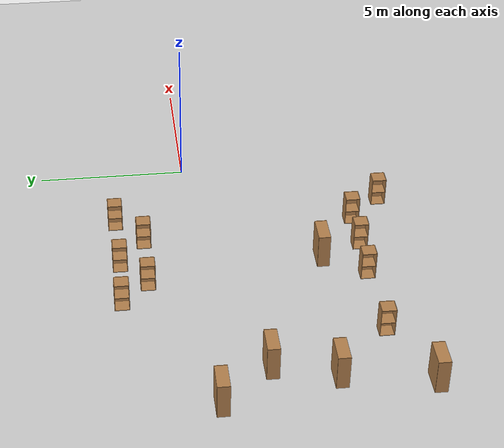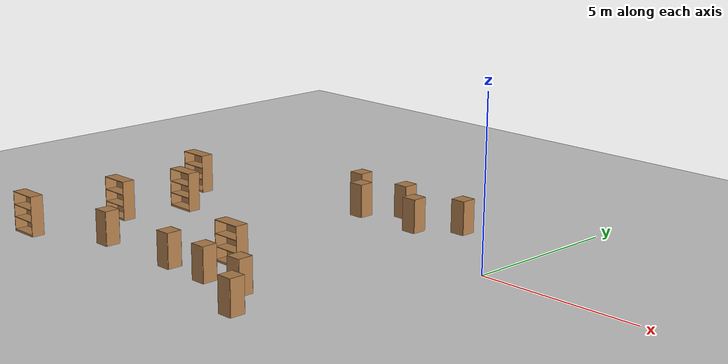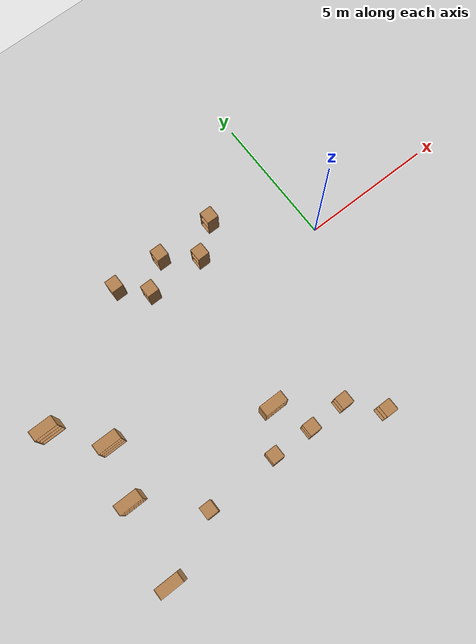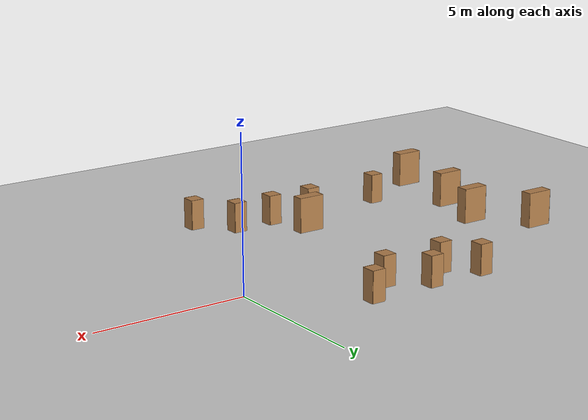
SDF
<sdf version="1.6">
 <world name="default">
  <model name="ground_plane">
   <static>1</static>
   <link name="link">
    <collision name="collision">
     <geometry><plane><normal>0 0 1</normal><size>100 100</size></plane></geometry>
     <surface><friction><ode><mu>100</mu><mu2>50</mu2></ode></friction></surface>
    </collision>
    <visual name="visual">
     <cast_shadows>0</cast_shadows>
     <geometry><plane><normal>0 0 1</normal><size>100 100</size></plane></geometry>
     <material>
      <script><uri>file://media/materials/scripts/gazebo.material</uri><name>Gazebo/Grey</name></script>
     </material>
    </visual>
   </link>
  </model>
  <model name="cabinet_22">
   <static>1</static>
   <link name="cabinet_bottom_plate">
    <inertial>
     <pose>0 0 -1 0 -0 0</pose>
     <inertia><ixx>2.05</ixx><ixy>0</ixy><ixz>0</ixz><iyy>2.05</iyy><iyz>0</iyz><izz>2.05</izz></inertia>
     <mass>25</mass>
    </inertial>
    <collision name="cabinet_bottom_plate_geom">
     <pose>0 0 0.01 0 -0 0</pose>
     <geometry><box><size>0.45 0.45 0.02</size></box></geometry>
    </collision>
    <visual name="cabinet_bottom_plate_geom_visual">
     <pose>0 0 0.01 0 -0 0</pose>
     <geometry><box><size>0.45 0.45 0.02</size></box></geometry>
     <material>
      <script><uri>file://media/materials/scripts/gazebo.material</uri><name>Gazebo/Wood</name></script>
     </material>
    </visual>
    <collision name="cabinet_bottom_plate_geom_cabinet_back_plate">
     <pose>0.235 0 0.51 0 -0 0</pose>
     <geometry><box><size>0.02 0.45 1.02</size></box></geometry>
    </collision>
    <visual name="cabinet_bottom_plate_geom_cabinet_back_plate_visual">
     <pose>0.235 0 0.51 0 -0 0</pose>
     <geometry><box><size>0.02 0.45 1.02</size></box></geometry>
     <material>
      <script><uri>file://media/materials/scripts/gazebo.material</uri><name>Gazebo/Wood</name></script>
     </material>
    </visual>
    <collision name="cabinet_bottom_plate_geom_cabinet_left_plate">
     <pose>0 0.235 0.51 0 -0 0</pose>
     <geometry><box><size>0.45 0.02 1.02</size></box></geometry>
    </collision>
    <visual name="cabinet_bottom_plate_geom_cabinet_left_plate_visual">
     <pose>0 0.235 0.51 0 -0 0</pose>
     <geometry><box><size>0.45 0.02 1.02</size></box></geometry>
     <material>
      <script><uri>file://media/materials/scripts/gazebo.material</uri><name>Gazebo/Wood</name></script>
     </material>
    </visual>
    <collision name="cabinet_bottom_plate_geom_cabinet_middle_plate">
     <pose>0 0 0.51 0 -0 0</pose>
     <geometry><box><size>0.45 0.45 0.02</size></box></geometry>
    </collision>
    <visual name="cabinet_bottom_plate_geom_cabinet_middle_plate_visual">
     <pose>0 0 0.51 0 -0 0</pose>
     <geometry><box><size>0.45 0.45 0.02</size></box></geometry>
     <material>
      <script><uri>file://media/materials/scripts/gazebo.material</uri><name>Gazebo/Wood</name></script>
     </material>
    </visual>
    <collision name="cabinet_bottom_plate_geom_cabinet_right_plate">
     <pose>0 -0.235 0.51 0 -0 0</pose>
     <geometry><box><size>0.45 0.02 1.02</size></box></geometry>
    </collision>
    <visual name="cabinet_bottom_plate_geom_cabinet_right_plate_visual">
     <pose>0 -0.235 0.51 0 -0 0</pose>
     <geometry><box><size>0.45 0.02 1.02</size></box></geometry>
     <material>
      <script><uri>file://media/materials/scripts/gazebo.material</uri><name>Gazebo/Wood</name></script>
     </material>
    </visual>
    <collision name="cabinet_bottom_plate_geom_cabinet_top_plate">
     <pose>0 0 1.01 0 -0 0</pose>
     <geometry><box><size>0.45 0.45 0.02</size></box></geometry>
    </collision>
    <visual name="cabinet_bottom_plate_geom_cabinet_top_plate_visual">
     <pose>0 0 1.01 0 -0 0</pose>
     <geometry><box><size>0.45 0.45 0.02</size></box></geometry>
     <material>
      <script><uri>file://media/materials/scripts/gazebo.material</uri><name>Gazebo/Wood</name></script>
     </material>
    </visual>
   </link>
   <pose>-9.10964 -5.62725 0 0 -0 0</pose>
  </model>
  <model name="cabinet_24">
   <static>1</static>
   <link name="cabinet_bottom_plate">
    <inertial>
     <pose>0 0 -1 0 -0 0</pose>
     <inertia><ixx>2.05</ixx><ixy>0</ixy><ixz>0</ixz><iyy>2.05</iyy><iyz>0</iyz><izz>2.05</izz></inertia>
     <mass>25</mass>
    </inertial>
    <collision name="cabinet_bottom_plate_geom">
     <pose>0 0 0.01 0 -0 0</pose>
     <geometry><box><size>0.45 0.45 0.02</size></box></geometry>
    </collision>
    <visual name="cabinet_bottom_plate_geom_visual">
     <pose>0 0 0.01 0 -0 0</pose>
     <geometry><box><size>0.45 0.45 0.02</size></box></geometry>
     <material>
      <script><uri>file://media/materials/scripts/gazebo.material</uri><name>Gazebo/Wood</name></script>
     </material>
    </visual>
    <collision name="cabinet_bottom_plate_geom_cabinet_back_plate">
     <pose>0.235 0 0.51 0 -0 0</pose>
     <geometry><box><size>0.02 0.45 1.02</size></box></geometry>
    </collision>
    <visual name="cabinet_bottom_plate_geom_cabinet_back_plate_visual">
     <pose>0.235 0 0.51 0 -0 0</pose>
     <geometry><box><size>0.02 0.45 1.02</size></box></geometry>
     <material>
      <script><uri>file://media/materials/scripts/gazebo.material</uri><name>Gazebo/Wood</name></script>
     </material>
    </visual>
    <collision name="cabinet_bottom_plate_geom_cabinet_left_plate">
     <pose>0 0.235 0.51 0 -0 0</pose>
     <geometry><box><size>0.45 0.02 1.02</size></box></geometry>
    </collision>
    <visual name="cabinet_bottom_plate_geom_cabinet_left_plate_visual">
     <pose>0 0.235 0.51 0 -0 0</pose>
     <geometry><box><size>0.45 0.02 1.02</size></box></geometry>
     <material>
      <script><uri>file://media/materials/scripts/gazebo.material</uri><name>Gazebo/Wood</name></script>
     </material>
    </visual>
    <collision name="cabinet_bottom_plate_geom_cabinet_middle_plate">
     <pose>0 0 0.51 0 -0 0</pose>
     <geometry><box><size>0.45 0.45 0.02</size></box></geometry>
    </collision>
    <visual name="cabinet_bottom_plate_geom_cabinet_middle_plate_visual">
     <pose>0 0 0.51 0 -0 0</pose>
     <geometry><box><size>0.45 0.45 0.02</size></box></geometry>
     <material>
      <script><uri>file://media/materials/scripts/gazebo.material</uri><name>Gazebo/Wood</name></script>
     </material>
    </visual>
    <collision name="cabinet_bottom_plate_geom_cabinet_right_plate">
     <pose>0 -0.235 0.51 0 -0 0</pose>
     <geometry><box><size>0.45 0.02 1.02</size></box></geometry>
    </collision>
    <visual name="cabinet_bottom_plate_geom_cabinet_right_plate_visual">
     <pose>0 -0.235 0.51 0 -0 0</pose>
     <geometry><box><size>0.45 0.02 1.02</size></box></geometry>
     <material>
      <script><uri>file://media/materials/scripts/gazebo.material</uri><name>Gazebo/Wood</name></script>
     </material>
    </visual>
    <collision name="cabinet_bottom_plate_geom_cabinet_top_plate">
     <pose>0 0 1.01 0 -0 0</pose>
     <geometry><box><size>0.45 0.45 0.02</size></box></geometry>
    </collision>
    <visual name="cabinet_bottom_plate_geom_cabinet_top_plate_visual">
     <pose>0 0 1.01 0 -0 0</pose>
     <geometry><box><size>0.45 0.45 0.02</size></box></geometry>
     <material>
      <script><uri>file://media/materials/scripts/gazebo.material</uri><name>Gazebo/Wood</name></script>
     </material>
    </visual>
   </link>
   <pose>-6.32849 -5.56078 0 0 -0 0</pose>
  </model>
  <model name="cabinet_25">
   <static>1</static>
   <link name="cabinet_bottom_plate">
    <inertial>
     <pose>0 0 -1 0 -0 0</pose>
     <inertia><ixx>2.05</ixx><ixy>0</ixy><ixz>0</ixz><iyy>2.05</iyy><iyz>0</iyz><izz>2.05</izz></inertia>
     <mass>25</mass>
    </inertial>
    <collision name="cabinet_bottom_plate_geom">
     <pose>0 0 0.01 0 -0 0</pose>
     <geometry><box><size>0.45 0.45 0.02</size></box></geometry>
    </collision>
    <visual name="cabinet_bottom_plate_geom_visual">
     <pose>0 0 0.01 0 -0 0</pose>
     <geometry><box><size>0.45 0.45 0.02</size></box></geometry>
     <material>
      <script><uri>file://media/materials/scripts/gazebo.material</uri><name>Gazebo/Wood</name></script>
     </material>
    </visual>
    <collision name="cabinet_bottom_plate_geom_cabinet_back_plate">
     <pose>0.235 0 0.51 0 -0 0</pose>
     <geometry><box><size>0.02 0.45 1.02</size></box></geometry>
    </collision>
    <visual name="cabinet_bottom_plate_geom_cabinet_back_plate_visual">
     <pose>0.235 0 0.51 0 -0 0</pose>
     <geometry><box><size>0.02 0.45 1.02</size></box></geometry>
     <material>
      <script><uri>file://media/materials/scripts/gazebo.material</uri><name>Gazebo/Wood</name></script>
     </material>
    </visual>
    <collision name="cabinet_bottom_plate_geom_cabinet_left_plate">
     <pose>0 0.235 0.51 0 -0 0</pose>
     <geometry><box><size>0.45 0.02 1.02</size></box></geometry>
    </collision>
    <visual name="cabinet_bottom_plate_geom_cabinet_left_plate_visual">
     <pose>0 0.235 0.51 0 -0 0</pose>
     <geometry><box><size>0.45 0.02 1.02</size></box></geometry>
     <material>
      <script><uri>file://media/materials/scripts/gazebo.material</uri><name>Gazebo/Wood</name></script>
     </material>
    </visual>
    <collision name="cabinet_bottom_plate_geom_cabinet_middle_plate">
     <pose>0 0 0.51 0 -0 0</pose>
     <geometry><box><size>0.45 0.45 0.02</size></box></geometry>
    </collision>
    <visual name="cabinet_bottom_plate_geom_cabinet_middle_plate_visual">
     <pose>0 0 0.51 0 -0 0</pose>
     <geometry><box><size>0.45 0.45 0.02</size></box></geometry>
     <material>
      <script><uri>file://media/materials/scripts/gazebo.material</uri><name>Gazebo/Wood</name></script>
     </material>
    </visual>
    <collision name="cabinet_bottom_plate_geom_cabinet_right_plate">
     <pose>0 -0.235 0.51 0 -0 0</pose>
     <geometry><box><size>0.45 0.02 1.02</size></box></geometry>
    </collision>
    <visual name="cabinet_bottom_plate_geom_cabinet_right_plate_visual">
     <pose>0 -0.235 0.51 0 -0 0</pose>
     <geometry><box><size>0.45 0.02 1.02</size></box></geometry>
     <material>
      <script><uri>file://media/materials/scripts/gazebo.material</uri><name>Gazebo/Wood</name></script>
     </material>
    </visual>
    <collision name="cabinet_bottom_plate_geom_cabinet_top_plate">
     <pose>0 0 1.01 0 -0 0</pose>
     <geometry><box><size>0.45 0.45 0.02</size></box></geometry>
    </collision>
    <visual name="cabinet_bottom_plate_geom_cabinet_top_plate_visual">
     <pose>0 0 1.01 0 -0 0</pose>
     <geometry><box><size>0.45 0.45 0.02</size></box></geometry>
     <material>
      <script><uri>file://media/materials/scripts/gazebo.material</uri><name>Gazebo/Wood</name></script>
     </material>
    </visual>
   </link>
   <pose>-4.77669 -5.59085 0 0 -0 0</pose>
  </model>
  <model name="cabinet_26">
   <static>1</static>
   <link name="cabinet_bottom_plate">
    <inertial>
     <pose>0 0 -1 0 -0 0</pose>
     <inertia><ixx>2.05</ixx><ixy>0</ixy><ixz>0</ixz><iyy>2.05</iyy><iyz>0</iyz><izz>2.05</izz></inertia>
     <mass>25</mass>
    </inertial>
    <collision name="cabinet_bottom_plate_geom">
     <pose>0 0 0.01 0 -0 0</pose>
     <geometry><box><size>0.45 0.45 0.02</size></box></geometry>
    </collision>
    <visual name="cabinet_bottom_plate_geom_visual">
     <pose>0 0 0.01 0 -0 0</pose>
     <geometry><box><size>0.45 0.45 0.02</size></box></geometry>
     <material>
      <script><uri>file://media/materials/scripts/gazebo.material</uri><name>Gazebo/Wood</name></script>
     </material>
    </visual>
    <collision name="cabinet_bottom_plate_geom_cabinet_back_plate">
     <pose>0.235 0 0.51 0 -0 0</pose>
     <geometry><box><size>0.02 0.45 1.02</size></box></geometry>
    </collision>
    <visual name="cabinet_bottom_plate_geom_cabinet_back_plate_visual">
     <pose>0.235 0 0.51 0 -0 0</pose>
     <geometry><box><size>0.02 0.45 1.02</size></box></geometry>
     <material>
      <script><uri>file://media/materials/scripts/gazebo.material</uri><name>Gazebo/Wood</name></script>
     </material>
    </visual>
    <collision name="cabinet_bottom_plate_geom_cabinet_left_plate">
     <pose>0 0.235 0.51 0 -0 0</pose>
     <geometry><box><size>0.45 0.02 1.02</size></box></geometry>
    </collision>
    <visual name="cabinet_bottom_plate_geom_cabinet_left_plate_visual">
     <pose>0 0.235 0.51 0 -0 0</pose>
     <geometry><box><size>0.45 0.02 1.02</size></box></geometry>
     <material>
      <script><uri>file://media/materials/scripts/gazebo.material</uri><name>Gazebo/Wood</name></script>
     </material>
    </visual>
    <collision name="cabinet_bottom_plate_geom_cabinet_middle_plate">
     <pose>0 0 0.51 0 -0 0</pose>
     <geometry><box><size>0.45 0.45 0.02</size></box></geometry>
    </collision>
    <visual name="cabinet_bottom_plate_geom_cabinet_middle_plate_visual">
     <pose>0 0 0.51 0 -0 0</pose>
     <geometry><box><size>0.45 0.45 0.02</size></box></geometry>
     <material>
      <script><uri>file://media/materials/scripts/gazebo.material</uri><name>Gazebo/Wood</name></script>
     </material>
    </visual>
    <collision name="cabinet_bottom_plate_geom_cabinet_right_plate">
     <pose>0 -0.235 0.51 0 -0 0</pose>
     <geometry><box><size>0.45 0.02 1.02</size></box></geometry>
    </collision>
    <visual name="cabinet_bottom_plate_geom_cabinet_right_plate_visual">
     <pose>0 -0.235 0.51 0 -0 0</pose>
     <geometry><box><size>0.45 0.02 1.02</size></box></geometry>
     <material>
      <script><uri>file://media/materials/scripts/gazebo.material</uri><name>Gazebo/Wood</name></script>
     </material>
    </visual>
    <collision name="cabinet_bottom_plate_geom_cabinet_top_plate">
     <pose>0 0 1.01 0 -0 0</pose>
     <geometry><box><size>0.45 0.45 0.02</size></box></geometry>
    </collision>
    <visual name="cabinet_bottom_plate_geom_cabinet_top_plate_visual">
     <pose>0 0 1.01 0 -0 0</pose>
     <geometry><box><size>0.45 0.45 0.02</size></box></geometry>
     <material>
      <script><uri>file://media/materials/scripts/gazebo.material</uri><name>Gazebo/Wood</name></script>
     </material>
    </visual>
   </link>
   <pose>-3.36117 -5.55915 0 0 -0 0</pose>
  </model>
  <model name="cabinet_27">
   <static>1</static>
   <link name="cabinet_bottom_plate">
    <inertial>
     <pose>0 0 -1 0 -0 0</pose>
     <inertia><ixx>2.05</ixx><ixy>0</ixy><ixz>0</ixz><iyy>2.05</iyy><iyz>0</iyz><izz>2.05</izz></inertia>
     <mass>25</mass>
    </inertial>
    <collision name="cabinet_bottom_plate_geom">
     <pose>0 0 0.01 0 -0 0</pose>
     <geometry><box><size>0.45 0.45 0.02</size></box></geometry>
    </collision>
    <visual name="cabinet_bottom_plate_geom_visual">
     <pose>0 0 0.01 0 -0 0</pose>
     <geometry><box><size>0.45 0.45 0.02</size></box></geometry>
     <material>
      <script><uri>file://media/materials/scripts/gazebo.material</uri><name>Gazebo/Wood</name></script>
     </material>
    </visual>
    <collision name="cabinet_bottom_plate_geom_cabinet_back_plate">
     <pose>0.235 0 0.51 0 -0 0</pose>
     <geometry><box><size>0.02 0.45 1.02</size></box></geometry>
    </collision>
    <visual name="cabinet_bottom_plate_geom_cabinet_back_plate_visual">
     <pose>0.235 0 0.51 0 -0 0</pose>
     <geometry><box><size>0.02 0.45 1.02</size></box></geometry>
     <material>
      <script><uri>file://media/materials/scripts/gazebo.material</uri><name>Gazebo/Wood</name></script>
     </material>
    </visual>
    <collision name="cabinet_bottom_plate_geom_cabinet_left_plate">
     <pose>0 0.235 0.51 0 -0 0</pose>
     <geometry><box><size>0.45 0.02 1.02</size></box></geometry>
    </collision>
    <visual name="cabinet_bottom_plate_geom_cabinet_left_plate_visual">
     <pose>0 0.235 0.51 0 -0 0</pose>
     <geometry><box><size>0.45 0.02 1.02</size></box></geometry>
     <material>
      <script><uri>file://media/materials/scripts/gazebo.material</uri><name>Gazebo/Wood</name></script>
     </material>
    </visual>
    <collision name="cabinet_bottom_plate_geom_cabinet_middle_plate">
     <pose>0 0 0.51 0 -0 0</pose>
     <geometry><box><size>0.45 0.45 0.02</size></box></geometry>
    </collision>
    <visual name="cabinet_bottom_plate_geom_cabinet_middle_plate_visual">
     <pose>0 0 0.51 0 -0 0</pose>
     <geometry><box><size>0.45 0.45 0.02</size></box></geometry>
     <material>
      <script><uri>file://media/materials/scripts/gazebo.material</uri><name>Gazebo/Wood</name></script>
     </material>
    </visual>
    <collision name="cabinet_bottom_plate_geom_cabinet_right_plate">
     <pose>0 -0.235 0.51 0 -0 0</pose>
     <geometry><box><size>0.45 0.02 1.02</size></box></geometry>
    </collision>
    <visual name="cabinet_bottom_plate_geom_cabinet_right_plate_visual">
     <pose>0 -0.235 0.51 0 -0 0</pose>
     <geometry><box><size>0.45 0.02 1.02</size></box></geometry>
     <material>
      <script><uri>file://media/materials/scripts/gazebo.material</uri><name>Gazebo/Wood</name></script>
     </material>
    </visual>
    <collision name="cabinet_bottom_plate_geom_cabinet_top_plate">
     <pose>0 0 1.01 0 -0 0</pose>
     <geometry><box><size>0.45 0.45 0.02</size></box></geometry>
    </collision>
    <visual name="cabinet_bottom_plate_geom_cabinet_top_plate_visual">
     <pose>0 0 1.01 0 -0 0</pose>
     <geometry><box><size>0.45 0.45 0.02</size></box></geometry>
     <material>
      <script><uri>file://media/materials/scripts/gazebo.material</uri><name>Gazebo/Wood</name></script>
     </material>
    </visual>
   </link>
   <pose>-2.36751 -6.66376 0 0 -0 0</pose>
  </model>
  <model name="cabinet_85">
   <static>1</static>
   <link name="cabinet_bottom_plate">
    <inertial>
     <pose>0 0 -1 0 -0 0</pose>
     <inertia><ixx>2.05</ixx><ixy>0</ixy><ixz>0</ixz><iyy>2.05</iyy><iyz>0</iyz><izz>2.05</izz></inertia>
     <mass>25</mass>
    </inertial>
    <collision name="cabinet_bottom_plate_geom">
     <pose>0 0 0.01 0 -0 0</pose>
     <geometry><box><size>0.45 0.45 0.02</size></box></geometry>
    </collision>
    <visual name="cabinet_bottom_plate_geom_visual">
     <pose>0 0 0.01 0 -0 0</pose>
     <geometry><box><size>0.45 0.45 0.02</size></box></geometry>
     <material>
      <script><uri>file://media/materials/scripts/gazebo.material</uri><name>Gazebo/Wood</name></script>
     </material>
    </visual>
    <collision name="cabinet_bottom_plate_geom_cabinet_back_plate">
     <pose>0.235 0 0.51 0 -0 0</pose>
     <geometry><box><size>0.02 0.45 1.02</size></box></geometry>
    </collision>
    <visual name="cabinet_bottom_plate_geom_cabinet_back_plate_visual">
     <pose>0.235 0 0.51 0 -0 0</pose>
     <geometry><box><size>0.02 0.45 1.02</size></box></geometry>
     <material>
      <script><uri>file://media/materials/scripts/gazebo.material</uri><name>Gazebo/Wood</name></script>
     </material>
    </visual>
    <collision name="cabinet_bottom_plate_geom_cabinet_left_plate">
     <pose>0 0.235 0.51 0 -0 0</pose>
     <geometry><box><size>0.45 0.02 1.02</size></box></geometry>
    </collision>
    <visual name="cabinet_bottom_plate_geom_cabinet_left_plate_visual">
     <pose>0 0.235 0.51 0 -0 0</pose>
     <geometry><box><size>0.45 0.02 1.02</size></box></geometry>
     <material>
      <script><uri>file://media/materials/scripts/gazebo.material</uri><name>Gazebo/Wood</name></script>
     </material>
    </visual>
    <collision name="cabinet_bottom_plate_geom_cabinet_middle_plate">
     <pose>0 0 0.51 0 -0 0</pose>
     <geometry><box><size>0.45 0.45 0.02</size></box></geometry>
    </collision>
    <visual name="cabinet_bottom_plate_geom_cabinet_middle_plate_visual">
     <pose>0 0 0.51 0 -0 0</pose>
     <geometry><box><size>0.45 0.45 0.02</size></box></geometry>
     <material>
      <script><uri>file://media/materials/scripts/gazebo.material</uri><name>Gazebo/Wood</name></script>
     </material>
    </visual>
    <collision name="cabinet_bottom_plate_geom_cabinet_right_plate">
     <pose>0 -0.235 0.51 0 -0 0</pose>
     <geometry><box><size>0.45 0.02 1.02</size></box></geometry>
    </collision>
    <visual name="cabinet_bottom_plate_geom_cabinet_right_plate_visual">
     <pose>0 -0.235 0.51 0 -0 0</pose>
     <geometry><box><size>0.45 0.02 1.02</size></box></geometry>
     <material>
      <script><uri>file://media/materials/scripts/gazebo.material</uri><name>Gazebo/Wood</name></script>
     </material>
    </visual>
    <collision name="cabinet_bottom_plate_geom_cabinet_top_plate">
     <pose>0 0 1.01 0 -0 0</pose>
     <geometry><box><size>0.45 0.45 0.02</size></box></geometry>
    </collision>
    <visual name="cabinet_bottom_plate_geom_cabinet_top_plate_visual">
     <pose>0 0 1.01 0 -0 0</pose>
     <geometry><box><size>0.45 0.45 0.02</size></box></geometry>
     <material>
      <script><uri>file://media/materials/scripts/gazebo.material</uri><name>Gazebo/Wood</name></script>
     </material>
    </visual>
   </link>
   <pose>-7.09937 2.49622 0 0 -0 0</pose>
  </model>
  <model name="cabinet_86">
   <static>1</static>
   <link name="cabinet_bottom_plate">
    <inertial>
     <pose>0 0 -1 0 -0 0</pose>
     <inertia><ixx>2.05</ixx><ixy>0</ixy><ixz>0</ixz><iyy>2.05</iyy><iyz>0</iyz><izz>2.05</izz></inertia>
     <mass>25</mass>
    </inertial>
    <collision name="cabinet_bottom_plate_geom">
     <pose>0 0 0.01 0 -0 0</pose>
     <geometry><box><size>0.45 0.45 0.02</size></box></geometry>
    </collision>
    <visual name="cabinet_bottom_plate_geom_visual">
     <pose>0 0 0.01 0 -0 0</pose>
     <geometry><box><size>0.45 0.45 0.02</size></box></geometry>
     <material>
      <script><uri>file://media/materials/scripts/gazebo.material</uri><name>Gazebo/Wood</name></script>
     </material>
    </visual>
    <collision name="cabinet_bottom_plate_geom_cabinet_back_plate">
     <pose>0.235 0 0.51 0 -0 0</pose>
     <geometry><box><size>0.02 0.45 1.02</size></box></geometry>
    </collision>
    <visual name="cabinet_bottom_plate_geom_cabinet_back_plate_visual">
     <pose>0.235 0 0.51 0 -0 0</pose>
     <geometry><box><size>0.02 0.45 1.02</size></box></geometry>
     <material>
      <script><uri>file://media/materials/scripts/gazebo.material</uri><name>Gazebo/Wood</name></script>
     </material>
    </visual>
    <collision name="cabinet_bottom_plate_geom_cabinet_left_plate">
     <pose>0 0.235 0.51 0 -0 0</pose>
     <geometry><box><size>0.45 0.02 1.02</size></box></geometry>
    </collision>
    <visual name="cabinet_bottom_plate_geom_cabinet_left_plate_visual">
     <pose>0 0.235 0.51 0 -0 0</pose>
     <geometry><box><size>0.45 0.02 1.02</size></box></geometry>
     <material>
      <script><uri>file://media/materials/scripts/gazebo.material</uri><name>Gazebo/Wood</name></script>
     </material>
    </visual>
    <collision name="cabinet_bottom_plate_geom_cabinet_middle_plate">
     <pose>0 0 0.51 0 -0 0</pose>
     <geometry><box><size>0.45 0.45 0.02</size></box></geometry>
    </collision>
    <visual name="cabinet_bottom_plate_geom_cabinet_middle_plate_visual">
     <pose>0 0 0.51 0 -0 0</pose>
     <geometry><box><size>0.45 0.45 0.02</size></box></geometry>
     <material>
      <script><uri>file://media/materials/scripts/gazebo.material</uri><name>Gazebo/Wood</name></script>
     </material>
    </visual>
    <collision name="cabinet_bottom_plate_geom_cabinet_right_plate">
     <pose>0 -0.235 0.51 0 -0 0</pose>
     <geometry><box><size>0.45 0.02 1.02</size></box></geometry>
    </collision>
    <visual name="cabinet_bottom_plate_geom_cabinet_right_plate_visual">
     <pose>0 -0.235 0.51 0 -0 0</pose>
     <geometry><box><size>0.45 0.02 1.02</size></box></geometry>
     <material>
      <script><uri>file://media/materials/scripts/gazebo.material</uri><name>Gazebo/Wood</name></script>
     </material>
    </visual>
    <collision name="cabinet_bottom_plate_geom_cabinet_top_plate">
     <pose>0 0 1.01 0 -0 0</pose>
     <geometry><box><size>0.45 0.45 0.02</size></box></geometry>
    </collision>
    <visual name="cabinet_bottom_plate_geom_cabinet_top_plate_visual">
     <pose>0 0 1.01 0 -0 0</pose>
     <geometry><box><size>0.45 0.45 0.02</size></box></geometry>
     <material>
      <script><uri>file://media/materials/scripts/gazebo.material</uri><name>Gazebo/Wood</name></script>
     </material>
    </visual>
   </link>
   <pose>-6.2108 1.60929 0 0 -0 0</pose>
  </model>
  <model name="cabinet_87">
   <static>1</static>
   <link name="cabinet_bottom_plate">
    <inertial>
     <pose>0 0 -1 0 -0 0</pose>
     <inertia><ixx>2.05</ixx><ixy>0</ixy><ixz>0</ixz><iyy>2.05</iyy><iyz>0</iyz><izz>2.05</izz></inertia>
     <mass>25</mass>
    </inertial>
    <collision name="cabinet_bottom_plate_geom">
     <pose>0 0 0.01 0 -0 0</pose>
     <geometry><box><size>0.45 0.45 0.02</size></box></geometry>
    </collision>
    <visual name="cabinet_bottom_plate_geom_visual">
     <pose>0 0 0.01 0 -0 0</pose>
     <geometry><box><size>0.45 0.45 0.02</size></box></geometry>
     <material>
      <script><uri>file://media/materials/scripts/gazebo.material</uri><name>Gazebo/Wood</name></script>
     </material>
    </visual>
    <collision name="cabinet_bottom_plate_geom_cabinet_back_plate">
     <pose>0.235 0 0.51 0 -0 0</pose>
     <geometry><box><size>0.02 0.45 1.02</size></box></geometry>
    </collision>
    <visual name="cabinet_bottom_plate_geom_cabinet_back_plate_visual">
     <pose>0.235 0 0.51 0 -0 0</pose>
     <geometry><box><size>0.02 0.45 1.02</size></box></geometry>
     <material>
      <script><uri>file://media/materials/scripts/gazebo.material</uri><name>Gazebo/Wood</name></script>
     </material>
    </visual>
    <collision name="cabinet_bottom_plate_geom_cabinet_left_plate">
     <pose>0 0.235 0.51 0 -0 0</pose>
     <geometry><box><size>0.45 0.02 1.02</size></box></geometry>
    </collision>
    <visual name="cabinet_bottom_plate_geom_cabinet_left_plate_visual">
     <pose>0 0.235 0.51 0 -0 0</pose>
     <geometry><box><size>0.45 0.02 1.02</size></box></geometry>
     <material>
      <script><uri>file://media/materials/scripts/gazebo.material</uri><name>Gazebo/Wood</name></script>
     </material>
    </visual>
    <collision name="cabinet_bottom_plate_geom_cabinet_middle_plate">
     <pose>0 0 0.51 0 -0 0</pose>
     <geometry><box><size>0.45 0.45 0.02</size></box></geometry>
    </collision>
    <visual name="cabinet_bottom_plate_geom_cabinet_middle_plate_visual">
     <pose>0 0 0.51 0 -0 0</pose>
     <geometry><box><size>0.45 0.45 0.02</size></box></geometry>
     <material>
      <script><uri>file://media/materials/scripts/gazebo.material</uri><name>Gazebo/Wood</name></script>
     </material>
    </visual>
    <collision name="cabinet_bottom_plate_geom_cabinet_right_plate">
     <pose>0 -0.235 0.51 0 -0 0</pose>
     <geometry><box><size>0.45 0.02 1.02</size></box></geometry>
    </collision>
    <visual name="cabinet_bottom_plate_geom_cabinet_right_plate_visual">
     <pose>0 -0.235 0.51 0 -0 0</pose>
     <geometry><box><size>0.45 0.02 1.02</size></box></geometry>
     <material>
      <script><uri>file://media/materials/scripts/gazebo.material</uri><name>Gazebo/Wood</name></script>
     </material>
    </visual>
    <collision name="cabinet_bottom_plate_geom_cabinet_top_plate">
     <pose>0 0 1.01 0 -0 0</pose>
     <geometry><box><size>0.45 0.45 0.02</size></box></geometry>
    </collision>
    <visual name="cabinet_bottom_plate_geom_cabinet_top_plate_visual">
     <pose>0 0 1.01 0 -0 0</pose>
     <geometry><box><size>0.45 0.45 0.02</size></box></geometry>
     <material>
      <script><uri>file://media/materials/scripts/gazebo.material</uri><name>Gazebo/Wood</name></script>
     </material>
    </visual>
   </link>
   <pose>-5.17904 2.46007 0 0 -0 0</pose>
  </model>
  <model name="cabinet_88">
   <static>1</static>
   <link name="cabinet_bottom_plate">
    <inertial>
     <pose>0 0 -1 0 -0 0</pose>
     <inertia><ixx>2.05</ixx><ixy>0</ixy><ixz>0</ixz><iyy>2.05</iyy><iyz>0</iyz><izz>2.05</izz></inertia>
     <mass>25</mass>
    </inertial>
    <collision name="cabinet_bottom_plate_geom">
     <pose>0 0 0.01 0 -0 0</pose>
     <geometry><box><size>0.45 0.45 0.02</size></box></geometry>
    </collision>
    <visual name="cabinet_bottom_plate_geom_visual">
     <pose>0 0 0.01 0 -0 0</pose>
     <geometry><box><size>0.45 0.45 0.02</size></box></geometry>
     <material>
      <script><uri>file://media/materials/scripts/gazebo.material</uri><name>Gazebo/Wood</name></script>
     </material>
    </visual>
    <collision name="cabinet_bottom_plate_geom_cabinet_back_plate">
     <pose>0.235 0 0.51 0 -0 0</pose>
     <geometry><box><size>0.02 0.45 1.02</size></box></geometry>
    </collision>
    <visual name="cabinet_bottom_plate_geom_cabinet_back_plate_visual">
     <pose>0.235 0 0.51 0 -0 0</pose>
     <geometry><box><size>0.02 0.45 1.02</size></box></geometry>
     <material>
      <script><uri>file://media/materials/scripts/gazebo.material</uri><name>Gazebo/Wood</name></script>
     </material>
    </visual>
    <collision name="cabinet_bottom_plate_geom_cabinet_left_plate">
     <pose>0 0.235 0.51 0 -0 0</pose>
     <geometry><box><size>0.45 0.02 1.02</size></box></geometry>
    </collision>
    <visual name="cabinet_bottom_plate_geom_cabinet_left_plate_visual">
     <pose>0 0.235 0.51 0 -0 0</pose>
     <geometry><box><size>0.45 0.02 1.02</size></box></geometry>
     <material>
      <script><uri>file://media/materials/scripts/gazebo.material</uri><name>Gazebo/Wood</name></script>
     </material>
    </visual>
    <collision name="cabinet_bottom_plate_geom_cabinet_middle_plate">
     <pose>0 0 0.51 0 -0 0</pose>
     <geometry><box><size>0.45 0.45 0.02</size></box></geometry>
    </collision>
    <visual name="cabinet_bottom_plate_geom_cabinet_middle_plate_visual">
     <pose>0 0 0.51 0 -0 0</pose>
     <geometry><box><size>0.45 0.45 0.02</size></box></geometry>
     <material>
      <script><uri>file://media/materials/scripts/gazebo.material</uri><name>Gazebo/Wood</name></script>
     </material>
    </visual>
    <collision name="cabinet_bottom_plate_geom_cabinet_right_plate">
     <pose>0 -0.235 0.51 0 -0 0</pose>
     <geometry><box><size>0.45 0.02 1.02</size></box></geometry>
    </collision>
    <visual name="cabinet_bottom_plate_geom_cabinet_right_plate_visual">
     <pose>0 -0.235 0.51 0 -0 0</pose>
     <geometry><box><size>0.45 0.02 1.02</size></box></geometry>
     <material>
      <script><uri>file://media/materials/scripts/gazebo.material</uri><name>Gazebo/Wood</name></script>
     </material>
    </visual>
    <collision name="cabinet_bottom_plate_geom_cabinet_top_plate">
     <pose>0 0 1.01 0 -0 0</pose>
     <geometry><box><size>0.45 0.45 0.02</size></box></geometry>
    </collision>
    <visual name="cabinet_bottom_plate_geom_cabinet_top_plate_visual">
     <pose>0 0 1.01 0 -0 0</pose>
     <geometry><box><size>0.45 0.45 0.02</size></box></geometry>
     <material>
      <script><uri>file://media/materials/scripts/gazebo.material</uri><name>Gazebo/Wood</name></script>
     </material>
    </visual>
   </link>
   <pose>-4.02816 1.6122 0 0 -0 0</pose>
  </model>
  <model name="cabinet_89">
   <static>1</static>
   <link name="cabinet_bottom_plate">
    <inertial>
     <pose>0 0 -1 0 -0 0</pose>
     <inertia><ixx>2.05</ixx><ixy>0</ixy><ixz>0</ixz><iyy>2.05</iyy><iyz>0</iyz><izz>2.05</izz></inertia>
     <mass>25</mass>
    </inertial>
    <collision name="cabinet_bottom_plate_geom">
     <pose>0 0 0.01 0 -0 0</pose>
     <geometry><box><size>0.45 0.45 0.02</size></box></geometry>
    </collision>
    <visual name="cabinet_bottom_plate_geom_visual">
     <pose>0 0 0.01 0 -0 0</pose>
     <geometry><box><size>0.45 0.45 0.02</size></box></geometry>
     <material>
      <script><uri>file://media/materials/scripts/gazebo.material</uri><name>Gazebo/Wood</name></script>
     </material>
    </visual>
    <collision name="cabinet_bottom_plate_geom_cabinet_back_plate">
     <pose>0.235 0 0.51 0 -0 0</pose>
     <geometry><box><size>0.02 0.45 1.02</size></box></geometry>
    </collision>
    <visual name="cabinet_bottom_plate_geom_cabinet_back_plate_visual">
     <pose>0.235 0 0.51 0 -0 0</pose>
     <geometry><box><size>0.02 0.45 1.02</size></box></geometry>
     <material>
      <script><uri>file://media/materials/scripts/gazebo.material</uri><name>Gazebo/Wood</name></script>
     </material>
    </visual>
    <collision name="cabinet_bottom_plate_geom_cabinet_left_plate">
     <pose>0 0.235 0.51 0 -0 0</pose>
     <geometry><box><size>0.45 0.02 1.02</size></box></geometry>
    </collision>
    <visual name="cabinet_bottom_plate_geom_cabinet_left_plate_visual">
     <pose>0 0.235 0.51 0 -0 0</pose>
     <geometry><box><size>0.45 0.02 1.02</size></box></geometry>
     <material>
      <script><uri>file://media/materials/scripts/gazebo.material</uri><name>Gazebo/Wood</name></script>
     </material>
    </visual>
    <collision name="cabinet_bottom_plate_geom_cabinet_middle_plate">
     <pose>0 0 0.51 0 -0 0</pose>
     <geometry><box><size>0.45 0.45 0.02</size></box></geometry>
    </collision>
    <visual name="cabinet_bottom_plate_geom_cabinet_middle_plate_visual">
     <pose>0 0 0.51 0 -0 0</pose>
     <geometry><box><size>0.45 0.45 0.02</size></box></geometry>
     <material>
      <script><uri>file://media/materials/scripts/gazebo.material</uri><name>Gazebo/Wood</name></script>
     </material>
    </visual>
    <collision name="cabinet_bottom_plate_geom_cabinet_right_plate">
     <pose>0 -0.235 0.51 0 -0 0</pose>
     <geometry><box><size>0.45 0.02 1.02</size></box></geometry>
    </collision>
    <visual name="cabinet_bottom_plate_geom_cabinet_right_plate_visual">
     <pose>0 -0.235 0.51 0 -0 0</pose>
     <geometry><box><size>0.45 0.02 1.02</size></box></geometry>
     <material>
      <script><uri>file://media/materials/scripts/gazebo.material</uri><name>Gazebo/Wood</name></script>
     </material>
    </visual>
    <collision name="cabinet_bottom_plate_geom_cabinet_top_plate">
     <pose>0 0 1.01 0 -0 0</pose>
     <geometry><box><size>0.45 0.45 0.02</size></box></geometry>
    </collision>
    <visual name="cabinet_bottom_plate_geom_cabinet_top_plate_visual">
     <pose>0 0 1.01 0 -0 0</pose>
     <geometry><box><size>0.45 0.45 0.02</size></box></geometry>
     <material>
      <script><uri>file://media/materials/scripts/gazebo.material</uri><name>Gazebo/Wood</name></script>
     </material>
    </visual>
   </link>
   <pose>-2.93301 2.51092 0 0 -0 0</pose>
  </model>
  <model name="bookshelf_5">
   <static>1</static>
   <link name="link">
    <inertial><mass>1</mass></inertial>
    <collision name="back">
     <pose>0 0.005 0.6 0 -0 0</pose>
     <geometry><box><size>0.9 0.01 1.2</size></box></geometry>
    </collision>
    <visual name="visual1">
     <pose>0 0.005 0.6 0 -0 0</pose>
     <geometry><box><size>0.9 0.01 1.2</size></box></geometry>
     <material>
      <script><uri>file://media/materials/scripts/gazebo.material</uri><name>Gazebo/Wood</name></script>
     </material>
    </visual>
    <collision name="left_side">
     <pose>0.45 -0.195 0.6 0 -0 0</pose>
     <geometry><box><size>0.02 0.4 1.2</size></box></geometry>
    </collision>
    <visual name="visual2">
     <pose>0.45 -0.195 0.6 0 -0 0</pose>
     <geometry><box><size>0.02 0.4 1.2</size></box></geometry>
     <material>
      <script><uri>file://media/materials/scripts/gazebo.material</uri><name>Gazebo/Wood</name></script>
     </material>
    </visual>
    <collision name="right_side">
     <pose>-0.45 -0.195 0.6 0 -0 0</pose>
     <geometry><box><size>0.02 0.4 1.2</size></box></geometry>
    </collision>
    <visual name="visual3">
     <pose>-0.45 -0.195 0.6 0 -0 0</pose>
     <geometry><box><size>0.02 0.4 1.2</size></box></geometry>
     <material>
      <script><uri>file://media/materials/scripts/gazebo.material</uri><name>Gazebo/Wood</name></script>
     </material>
    </visual>
    <collision name="bottom">
     <pose>0 -0.195 0.03 0 -0 0</pose>
     <geometry><box><size>0.88 0.4 0.06</size></box></geometry>
    </collision>
    <visual name="visual4">
     <pose>0 -0.195 0.03 0 -0 0</pose>
     <geometry><box><size>0.88 0.4 0.06</size></box></geometry>
     <material>
      <script><uri>file://media/materials/scripts/gazebo.material</uri><name>Gazebo/Wood</name></script>
     </material>
    </visual>
    <collision name="top">
     <pose>0 -0.195 1.19 0 -0 0</pose>
     <geometry><box><size>0.88 0.4 0.02</size></box></geometry>
    </collision>
    <visual name="visual5">
     <pose>0 -0.195 1.19 0 -0 0</pose>
     <geometry><box><size>0.88 0.4 0.02</size></box></geometry>
     <material>
      <script><uri>file://media/materials/scripts/gazebo.material</uri><name>Gazebo/Wood</name></script>
     </material>
    </visual>
    <collision name="low_shelf">
     <pose>0 -0.195 0.43 0 -0 0</pose>
     <geometry><box><size>0.88 0.4 0.02</size></box></geometry>
    </collision>
    <visual name="visual6">
     <pose>0 -0.195 0.43 0 -0 0</pose>
     <geometry><box><size>0.88 0.4 0.02</size></box></geometry>
     <material>
      <script><uri>file://media/materials/scripts/gazebo.material</uri><name>Gazebo/Wood</name></script>
     </material>
    </visual>
    <collision name="high_shelf">
     <pose>0 -0.195 0.8 0 -0 0</pose>
     <geometry><box><size>0.88 0.4 0.02</size></box></geometry>
    </collision>
    <visual name="visual7">
     <pose>0 -0.195 0.8 0 -0 0</pose>
     <geometry><box><size>0.88 0.4 0.02</size></box></geometry>
     <material>
      <script><uri>file://media/materials/scripts/gazebo.material</uri><name>Gazebo/Wood</name></script>
     </material>
    </visual>
   </link>
   <pose>-11.846 0.004175 0 0 -0 0</pose>
  </model>
  <model name="bookshelf_9">
   <static>1</static>
   <link name="link">
    <inertial><mass>1</mass></inertial>
    <collision name="back">
     <pose>0 0.005 0.6 0 -0 0</pose>
     <geometry><box><size>0.9 0.01 1.2</size></box></geometry>
    </collision>
    <visual name="visual1">
     <pose>0 0.005 0.6 0 -0 0</pose>
     <geometry><box><size>0.9 0.01 1.2</size></box></geometry>
     <material>
      <script><uri>file://media/materials/scripts/gazebo.material</uri><name>Gazebo/Wood</name></script>
     </material>
    </visual>
    <collision name="left_side">
     <pose>0.45 -0.195 0.6 0 -0 0</pose>
     <geometry><box><size>0.02 0.4 1.2</size></box></geometry>
    </collision>
    <visual name="visual2">
     <pose>0.45 -0.195 0.6 0 -0 0</pose>
     <geometry><box><size>0.02 0.4 1.2</size></box></geometry>
     <material>
      <script><uri>file://media/materials/scripts/gazebo.material</uri><name>Gazebo/Wood</name></script>
     </material>
    </visual>
    <collision name="right_side">
     <pose>-0.45 -0.195 0.6 0 -0 0</pose>
     <geometry><box><size>0.02 0.4 1.2</size></box></geometry>
    </collision>
    <visual name="visual3">
     <pose>-0.45 -0.195 0.6 0 -0 0</pose>
     <geometry><box><size>0.02 0.4 1.2</size></box></geometry>
     <material>
      <script><uri>file://media/materials/scripts/gazebo.material</uri><name>Gazebo/Wood</name></script>
     </material>
    </visual>
    <collision name="bottom">
     <pose>0 -0.195 0.03 0 -0 0</pose>
     <geometry><box><size>0.88 0.4 0.06</size></box></geometry>
    </collision>
    <visual name="visual4">
     <pose>0 -0.195 0.03 0 -0 0</pose>
     <geometry><box><size>0.88 0.4 0.06</size></box></geometry>
     <material>
      <script><uri>file://media/materials/scripts/gazebo.material</uri><name>Gazebo/Wood</name></script>
     </material>
    </visual>
    <collision name="top">
     <pose>0 -0.195 1.19 0 -0 0</pose>
     <geometry><box><size>0.88 0.4 0.02</size></box></geometry>
    </collision>
    <visual name="visual5">
     <pose>0 -0.195 1.19 0 -0 0</pose>
     <geometry><box><size>0.88 0.4 0.02</size></box></geometry>
     <material>
      <script><uri>file://media/materials/scripts/gazebo.material</uri><name>Gazebo/Wood</name></script>
     </material>
    </visual>
    <collision name="low_shelf">
     <pose>0 -0.195 0.43 0 -0 0</pose>
     <geometry><box><size>0.88 0.4 0.02</size></box></geometry>
    </collision>
    <visual name="visual6">
     <pose>0 -0.195 0.43 0 -0 0</pose>
     <geometry><box><size>0.88 0.4 0.02</size></box></geometry>
     <material>
      <script><uri>file://media/materials/scripts/gazebo.material</uri><name>Gazebo/Wood</name></script>
     </material>
    </visual>
    <collision name="high_shelf">
     <pose>0 -0.195 0.8 0 -0 0</pose>
     <geometry><box><size>0.88 0.4 0.02</size></box></geometry>
    </collision>
    <visual name="visual7">
     <pose>0 -0.195 0.8 0 -0 0</pose>
     <geometry><box><size>0.88 0.4 0.02</size></box></geometry>
     <material>
      <script><uri>file://media/materials/scripts/gazebo.material</uri><name>Gazebo/Wood</name></script>
     </material>
    </visual>
   </link>
   <pose>-11.0197 -3.65057 0 0 -0 0</pose>
  </model>
  <model name="bookshelf_10">
   <static>1</static>
   <link name="link">
    <inertial><mass>1</mass></inertial>
    <collision name="back">
     <pose>0 0.005 0.6 0 -0 0</pose>
     <geometry><box><size>0.9 0.01 1.2</size></box></geometry>
    </collision>
    <visual name="visual1">
     <pose>0 0.005 0.6 0 -0 0</pose>
     <geometry><box><size>0.9 0.01 1.2</size></box></geometry>
     <material>
      <script><uri>file://media/materials/scripts/gazebo.material</uri><name>Gazebo/Wood</name></script>
     </material>
    </visual>
    <collision name="left_side">
     <pose>0.45 -0.195 0.6 0 -0 0</pose>
     <geometry><box><size>0.02 0.4 1.2</size></box></geometry>
    </collision>
    <visual name="visual2">
     <pose>0.45 -0.195 0.6 0 -0 0</pose>
     <geometry><box><size>0.02 0.4 1.2</size></box></geometry>
     <material>
      <script><uri>file://media/materials/scripts/gazebo.material</uri><name>Gazebo/Wood</name></script>
     </material>
    </visual>
    <collision name="right_side">
     <pose>-0.45 -0.195 0.6 0 -0 0</pose>
     <geometry><box><size>0.02 0.4 1.2</size></box></geometry>
    </collision>
    <visual name="visual3">
     <pose>-0.45 -0.195 0.6 0 -0 0</pose>
     <geometry><box><size>0.02 0.4 1.2</size></box></geometry>
     <material>
      <script><uri>file://media/materials/scripts/gazebo.material</uri><name>Gazebo/Wood</name></script>
     </material>
    </visual>
    <collision name="bottom">
     <pose>0 -0.195 0.03 0 -0 0</pose>
     <geometry><box><size>0.88 0.4 0.06</size></box></geometry>
    </collision>
    <visual name="visual4">
     <pose>0 -0.195 0.03 0 -0 0</pose>
     <geometry><box><size>0.88 0.4 0.06</size></box></geometry>
     <material>
      <script><uri>file://media/materials/scripts/gazebo.material</uri><name>Gazebo/Wood</name></script>
     </material>
    </visual>
    <collision name="top">
     <pose>0 -0.195 1.19 0 -0 0</pose>
     <geometry><box><size>0.88 0.4 0.02</size></box></geometry>
    </collision>
    <visual name="visual5">
     <pose>0 -0.195 1.19 0 -0 0</pose>
     <geometry><box><size>0.88 0.4 0.02</size></box></geometry>
     <material>
      <script><uri>file://media/materials/scripts/gazebo.material</uri><name>Gazebo/Wood</name></script>
     </material>
    </visual>
    <collision name="low_shelf">
     <pose>0 -0.195 0.43 0 -0 0</pose>
     <geometry><box><size>0.88 0.4 0.02</size></box></geometry>
    </collision>
    <visual name="visual6">
     <pose>0 -0.195 0.43 0 -0 0</pose>
     <geometry><box><size>0.88 0.4 0.02</size></box></geometry>
     <material>
      <script><uri>file://media/materials/scripts/gazebo.material</uri><name>Gazebo/Wood</name></script>
     </material>
    </visual>
    <collision name="high_shelf">
     <pose>0 -0.195 0.8 0 -0 0</pose>
     <geometry><box><size>0.88 0.4 0.02</size></box></geometry>
    </collision>
    <visual name="visual7">
     <pose>0 -0.195 0.8 0 -0 0</pose>
     <geometry><box><size>0.88 0.4 0.02</size></box></geometry>
     <material>
      <script><uri>file://media/materials/scripts/gazebo.material</uri><name>Gazebo/Wood</name></script>
     </material>
    </visual>
   </link>
   <pose>-5.32306 -4.01849 0 0 -0 0</pose>
  </model>
  <model name="bookshelf_11">
   <static>1</static>
   <link name="link">
    <inertial><mass>1</mass></inertial>
    <collision name="back">
     <pose>0 0.005 0.6 0 -0 0</pose>
     <geometry><box><size>0.9 0.01 1.2</size></box></geometry>
    </collision>
    <visual name="visual1">
     <pose>0 0.005 0.6 0 -0 0</pose>
     <geometry><box><size>0.9 0.01 1.2</size></box></geometry>
     <material>
      <script><uri>file://media/materials/scripts/gazebo.material</uri><name>Gazebo/Wood</name></script>
     </material>
    </visual>
    <collision name="left_side">
     <pose>0.45 -0.195 0.6 0 -0 0</pose>
     <geometry><box><size>0.02 0.4 1.2</size></box></geometry>
    </collision>
    <visual name="visual2">
     <pose>0.45 -0.195 0.6 0 -0 0</pose>
     <geometry><box><size>0.02 0.4 1.2</size></box></geometry>
     <material>
      <script><uri>file://media/materials/scripts/gazebo.material</uri><name>Gazebo/Wood</name></script>
     </material>
    </visual>
    <collision name="right_side">
     <pose>-0.45 -0.195 0.6 0 -0 0</pose>
     <geometry><box><size>0.02 0.4 1.2</size></box></geometry>
    </collision>
    <visual name="visual3">
     <pose>-0.45 -0.195 0.6 0 -0 0</pose>
     <geometry><box><size>0.02 0.4 1.2</size></box></geometry>
     <material>
      <script><uri>file://media/materials/scripts/gazebo.material</uri><name>Gazebo/Wood</name></script>
     </material>
    </visual>
    <collision name="bottom">
     <pose>0 -0.195 0.03 0 -0 0</pose>
     <geometry><box><size>0.88 0.4 0.06</size></box></geometry>
    </collision>
    <visual name="visual4">
     <pose>0 -0.195 0.03 0 -0 0</pose>
     <geometry><box><size>0.88 0.4 0.06</size></box></geometry>
     <material>
      <script><uri>file://media/materials/scripts/gazebo.material</uri><name>Gazebo/Wood</name></script>
     </material>
    </visual>
    <collision name="top">
     <pose>0 -0.195 1.19 0 -0 0</pose>
     <geometry><box><size>0.88 0.4 0.02</size></box></geometry>
    </collision>
    <visual name="visual5">
     <pose>0 -0.195 1.19 0 -0 0</pose>
     <geometry><box><size>0.88 0.4 0.02</size></box></geometry>
     <material>
      <script><uri>file://media/materials/scripts/gazebo.material</uri><name>Gazebo/Wood</name></script>
     </material>
    </visual>
    <collision name="low_shelf">
     <pose>0 -0.195 0.43 0 -0 0</pose>
     <geometry><box><size>0.88 0.4 0.02</size></box></geometry>
    </collision>
    <visual name="visual6">
     <pose>0 -0.195 0.43 0 -0 0</pose>
     <geometry><box><size>0.88 0.4 0.02</size></box></geometry>
     <material>
      <script><uri>file://media/materials/scripts/gazebo.material</uri><name>Gazebo/Wood</name></script>
     </material>
    </visual>
    <collision name="high_shelf">
     <pose>0 -0.195 0.8 0 -0 0</pose>
     <geometry><box><size>0.88 0.4 0.02</size></box></geometry>
    </collision>
    <visual name="visual7">
     <pose>0 -0.195 0.8 0 -0 0</pose>
     <geometry><box><size>0.88 0.4 0.02</size></box></geometry>
     <material>
      <script><uri>file://media/materials/scripts/gazebo.material</uri><name>Gazebo/Wood</name></script>
     </material>
    </visual>
   </link>
   <pose>-10.4379 -1.64186 0 0 -0 0</pose>
  </model>
  <model name="bookshelf_12">
   <static>1</static>
   <link name="link">
    <inertial><mass>1</mass></inertial>
    <collision name="back">
     <pose>0 0.005 0.6 0 -0 0</pose>
     <geometry><box><size>0.9 0.01 1.2</size></box></geometry>
    </collision>
    <visual name="visual1">
     <pose>0 0.005 0.6 0 -0 0</pose>
     <geometry><box><size>0.9 0.01 1.2</size></box></geometry>
     <material>
      <script><uri>file://media/materials/scripts/gazebo.material</uri><name>Gazebo/Wood</name></script>
     </material>
    </visual>
    <collision name="left_side">
     <pose>0.45 -0.195 0.6 0 -0 0</pose>
     <geometry><box><size>0.02 0.4 1.2</size></box></geometry>
    </collision>
    <visual name="visual2">
     <pose>0.45 -0.195 0.6 0 -0 0</pose>
     <geometry><box><size>0.02 0.4 1.2</size></box></geometry>
     <material>
      <script><uri>file://media/materials/scripts/gazebo.material</uri><name>Gazebo/Wood</name></script>
     </material>
    </visual>
    <collision name="right_side">
     <pose>-0.45 -0.195 0.6 0 -0 0</pose>
     <geometry><box><size>0.02 0.4 1.2</size></box></geometry>
    </collision>
    <visual name="visual3">
     <pose>-0.45 -0.195 0.6 0 -0 0</pose>
     <geometry><box><size>0.02 0.4 1.2</size></box></geometry>
     <material>
      <script><uri>file://media/materials/scripts/gazebo.material</uri><name>Gazebo/Wood</name></script>
     </material>
    </visual>
    <collision name="bottom">
     <pose>0 -0.195 0.03 0 -0 0</pose>
     <geometry><box><size>0.88 0.4 0.06</size></box></geometry>
    </collision>
    <visual name="visual4">
     <pose>0 -0.195 0.03 0 -0 0</pose>
     <geometry><box><size>0.88 0.4 0.06</size></box></geometry>
     <material>
      <script><uri>file://media/materials/scripts/gazebo.material</uri><name>Gazebo/Wood</name></script>
     </material>
    </visual>
    <collision name="top">
     <pose>0 -0.195 1.19 0 -0 0</pose>
     <geometry><box><size>0.88 0.4 0.02</size></box></geometry>
    </collision>
    <visual name="visual5">
     <pose>0 -0.195 1.19 0 -0 0</pose>
     <geometry><box><size>0.88 0.4 0.02</size></box></geometry>
     <material>
      <script><uri>file://media/materials/scripts/gazebo.material</uri><name>Gazebo/Wood</name></script>
     </material>
    </visual>
    <collision name="low_shelf">
     <pose>0 -0.195 0.43 0 -0 0</pose>
     <geometry><box><size>0.88 0.4 0.02</size></box></geometry>
    </collision>
    <visual name="visual6">
     <pose>0 -0.195 0.43 0 -0 0</pose>
     <geometry><box><size>0.88 0.4 0.02</size></box></geometry>
     <material>
      <script><uri>file://media/materials/scripts/gazebo.material</uri><name>Gazebo/Wood</name></script>
     </material>
    </visual>
    <collision name="high_shelf">
     <pose>0 -0.195 0.8 0 -0 0</pose>
     <geometry><box><size>0.88 0.4 0.02</size></box></geometry>
    </collision>
    <visual name="visual7">
     <pose>0 -0.195 0.8 0 -0 0</pose>
     <geometry><box><size>0.88 0.4 0.02</size></box></geometry>
     <material>
      <script><uri>file://media/materials/scripts/gazebo.material</uri><name>Gazebo/Wood</name></script>
     </material>
    </visual>
   </link>
   <pose>-11.4947 -6.53244 0 0 -0 0</pose>
  </model>
 </world>
</sdf>
